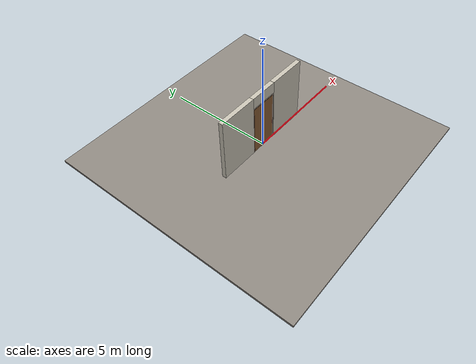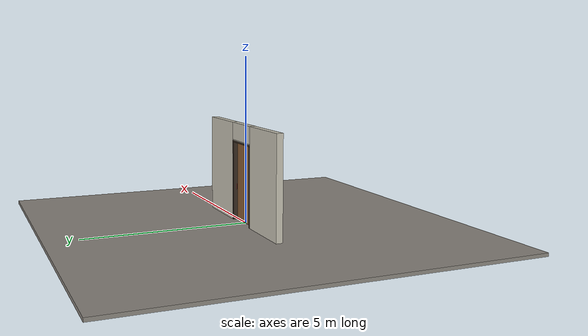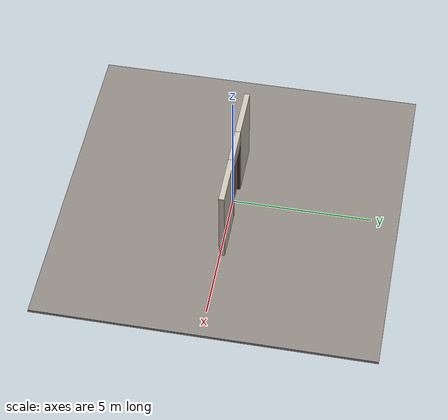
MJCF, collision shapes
<?xml version="1.0" ?>
<mujoco model="db0358_pivot_full">
  <compiler angle="radian" meshdir="../../hardware" texturedir="../../textures" autolimits="true" inertiafromgeom="false"/>
  <option timestep="0.002" integrator="implicitfast" cone="elliptic" impratio="10" noslip_iterations="3">
    <flag multiccd="enable"/>
  </option>
  <size memory="16M"/>
  <default>
    <geom condim="4" solref="0.005 1" solimp="0.95 0.99 0.001"/>
    <joint solreflimit="0.005 1" solimplimit="0.95 0.99 0.001"/>
    <tendon solreflimit="0.005 1"/>
    <equality solref="0.002 1"/>
  </default>
  <visual>
    <headlight ambient="0.4 0.4 0.4" diffuse="0.7 0.7 0.7" specular="0.2 0.2 0.2"/>
    <quality shadowsize="4096"/>
    <map znear="0.01" zfar="60"/>
  </visual>
  <asset>
    <mesh name="pull_1e5d69a91a" file="pull_1e5d69a91a.obj"/>
    <material name="mat_floor" rgba="0.55 0.53 0.5 1" specular="0.2" shininess="0.15" reflectance="0"/>
    <material name="mat_wall" rgba="0.78 0.76 0.7 1" specular="0.2" shininess="0.1" reflectance="0"/>
    <material name="mat_leaf" rgba="0.53 0.352 0.199 1" specular="0.2" shininess="0.6" reflectance="0"/>
    <material name="mat_hinge" rgba="0.65 0.66 0.68 1" specular="0.74" shininess="0.5" reflectance="0.36"/>
    <material name="mat_op_stainless" rgba="0.75 0.76 0.77 1" specular="0.8" shininess="0.65" reflectance="0.4"/>
    <material name="mat_frame" rgba="0.22 0.17 0.13 1" specular="0.8" shininess="0.6" reflectance="0.4"/>
    <texture name="skybox" type="skybox" builtin="gradient" rgb1="0.6 0.7 0.85" rgb2="0.9 0.92 0.95" width="256" height="256"/>
  </asset>
  <worldbody>
    <light name="sun" pos="1.5 -2.5 4" dir="-0.3 0.5 -0.8" directional="true" diffuse="0.8 0.8 0.8" specular="0.3 0.3 0.3" castshadow="true"/>
    <light name="fill" pos="-1.5 2.5 3" dir="0.3 -0.5 -0.7" directional="true" diffuse="0.35 0.35 0.4" castshadow="false"/>
    <camera name="robot_view" pos="0 -2.82325 2.01415" xyaxes="1 0 0 0 0.26963 0.962964" fovy="52"/>
    <camera name="far_view" pos="0 2.94925 2.01415" xyaxes="-1 0 0 0 -0.26963 0.962964" fovy="52"/>
    <camera name="iso" pos="2.19355 -2.36145 2.47595" xyaxes="0.741536 0.670913 0 -0.242917 0.268487 0.932151" fovy="46"/>
    <camera name="detail_handle" pos="0.675 -0.89 1.33" xyaxes="0.97561 0.219512 0 -0.070934 0.315262 0.94635" fovy="38"/>
    <geom name="floor" type="box" size="6 6 0.05" pos="0 0 -0.05" material="mat_floor" group="0" contype="1" conaffinity="1" friction="0.8 0.005 0.0001" density="2400"/>
    <geom name="wall_left" type="box" size="0.9245 0.1 1.506" pos="-1.5755 0.063 1.506" material="mat_wall" group="0" contype="1" conaffinity="1" friction="0.6 0.005 0.0001" density="800"/>
    <geom name="wall_right" type="box" size="0.9095 0.1 1.506" pos="1.5905 0.063 1.506" material="mat_wall" group="0" contype="1" conaffinity="1" friction="0.6 0.005 0.0001" density="800"/>
    <geom name="wall_header" type="box" size="0.666 0.1 0.2625" pos="0.015 0.063 2.7495" material="mat_wall" group="0" contype="1" conaffinity="1" friction="0.6 0.005 0.0001" density="800"/>
    <geom name="pivot_bottom_socket" type="box" size="0.035 0.035 0.008" pos="-0.366 0 -0.002" material="mat_hinge" group="1" contype="0" conaffinity="0" density="7850"/>
    <geom name="pivot_top_bracket" type="box" size="0.035 0.035 0.0355" pos="-0.366 0 2.4515" material="mat_hinge" group="1" contype="0" conaffinity="0" density="7850"/>
    <geom name="jamb_hinge" type="box" size="0.0225 0.1 1.206" pos="-0.6285 0.063 1.206" material="mat_frame" group="0" contype="1" conaffinity="1" friction="0.6 0.005 0.0001" density="300"/>
    <geom name="jamb_strike" type="box" size="0.0225 0.1 1.206" pos="0.6285 0.063 1.206" material="mat_frame" group="0" contype="1" conaffinity="1" friction="0.6 0.005 0.0001" density="300"/>
    <geom name="stud_strike" type="box" size="0.015 0.1 1.206" pos="0.666 0.063 1.206" material="mat_wall" group="0" contype="1" conaffinity="1" friction="0.6 0.005 0.0001" density="500"/>
    <geom name="jamb_head" type="box" size="0.666 0.1 0.0225" pos="0.015 0.063 2.4345" material="mat_frame" group="0" contype="1" conaffinity="1" friction="0.6 0.005 0.0001" density="300"/>
    <geom name="head_stud" type="box" size="0.666 0.1 0.015" pos="0.015 0.063 2.472" material="mat_wall" group="0" contype="1" conaffinity="1" friction="0.6 0.005 0.0001" density="500"/>
    <site name="approach_point" pos="0 -1.5 0" quat="1 0 0 0" size="0.05" rgba="0.2 0.9 0.2 0.5" group="4"/>
    <site name="goal_point" pos="0 1.5 0" quat="1 0 0 0" size="0.05" rgba="0.2 0.9 0.2 0.5" group="4"/>
    <site name="door_plane_center" pos="0 0 1.206" quat="1 0 0 0" size="0.02" rgba="0.2 0.9 0.2 0.5" group="4"/>
    <body name="leaf" pos="-0.606 0 0">
      <inertial pos="0.609679 0 1.206746" mass="114.82" quat="-0.499567 0.499567 0.500432 0.500432" diaginertia="13.932186112 54.818107224 68.669502628"/>
      <joint name="leaf_hinge" type="hinge" axis="0 0 -1" pos="0.24 0 0" limited="true" range="0 1.570796" solreflimit="0.02 1" damping="0.948781" frictionloss="2.652279" armature="0.02"/>
      <geom name="leaf_slab" type="box" size="0.6 0.03 1.2" pos="0.606 0 1.208" material="mat_leaf" group="0" contype="1" conaffinity="1" friction="0.3 0.005 0.0001" density="1"/>
      <geom name="pivot_bottom" type="cylinder" size="0.014 0.004" pos="0.24 0 0.003" material="mat_hinge" group="1" contype="0" conaffinity="0" density="7850"/>
      <geom name="pivot_top" type="cylinder" size="0.014 0.004" pos="0.24 0 2.412" material="mat_hinge" group="1" contype="0" conaffinity="0" density="7850"/>
      <geom name="leaf_pull_n" type="mesh" mesh="pull_1e5d69a91a" pos="1.101 -0.03 1.05" quat="0.707107 0.707107 0 0" material="mat_op_stainless" group="1" contype="0" conaffinity="0" density="3000"/>
      <geom name="leaf_pull_col_n" type="capsule" size="0.0095 0.08" pos="1.101 -0.09 1.05" material="mat_op_stainless" group="3" contype="1" conaffinity="1" rgba="0.8 0.3 0.3 0.25" friction="0.7 0.01 0.0001" density="3000"/>
      <geom name="leaf_pull_p" type="mesh" mesh="pull_1e5d69a91a" pos="1.101 0.03 1.05" quat="-0.707107 0.707107 0 0" material="mat_op_stainless" group="1" contype="0" conaffinity="0" density="3000"/>
      <geom name="leaf_pull_col_p" type="capsule" size="0.0095 0.08" pos="1.101 0.09 1.05" material="mat_op_stainless" group="3" contype="1" conaffinity="1" rgba="0.8 0.3 0.3 0.25" friction="0.7 0.01 0.0001" density="3000"/>
      <site name="leaf_pull_grip_n" pos="1.101 -0.09 1.05" quat="1 0 0 0" size="0.012" rgba="0.2 0.9 0.2 0.5" group="4"/>
      <site name="leaf_pull_grip_p" pos="1.101 0.09 1.05" quat="1 0 0 0" size="0.012" rgba="0.2 0.9 0.2 0.5" group="4"/>
      <site name="leaf_edge_mid" pos="1.206 0 1.2" quat="1 0 0 0" size="0.02" rgba="0.2 0.9 0.2 0.5" group="4"/>
    </body>
  </worldbody>
  <sensor>
    <jointpos name="leaf_hinge_pos" joint="leaf_hinge"/>
    <jointvel name="leaf_hinge_vel" joint="leaf_hinge"/>
  </sensor>
</mujoco>
